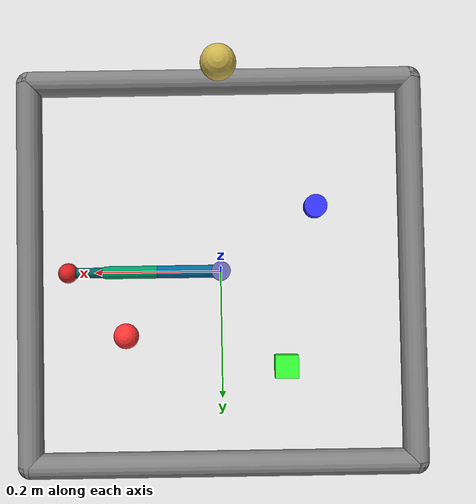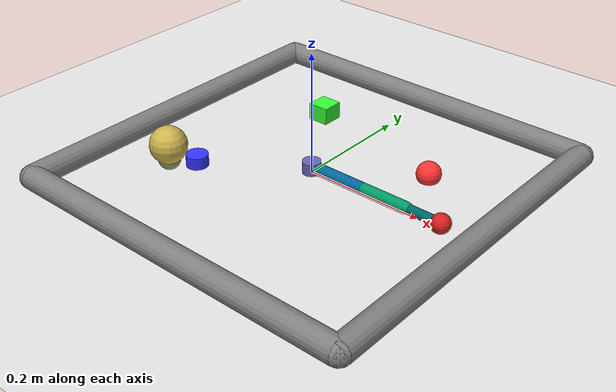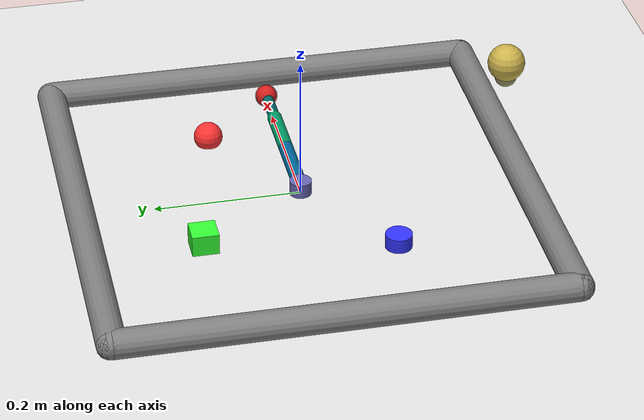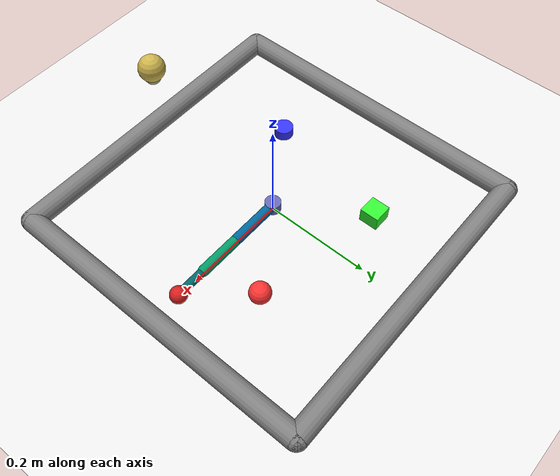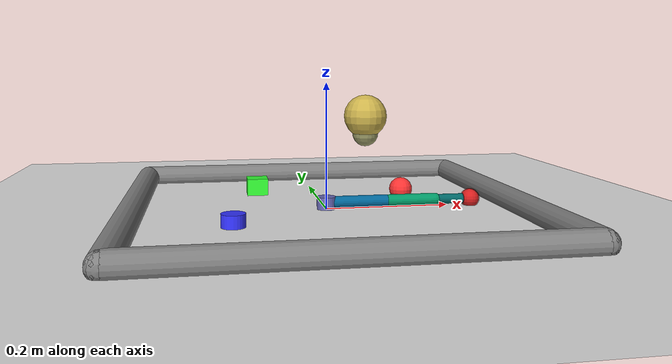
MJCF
<mujoco model="tabletop_reach_v6">
  <compiler angle="radian" inertiafromgeom="true"/>
  <default>
    <joint armature="1" damping="1" limited="true"/>
    <geom contype="0" friction="1 0.1 0.1"/>
  </default>
  <option gravity="0 0 -9.81" integrator="RK4" timestep="0.01"/>

  <worldbody>
    <!-- Ground -->
    <geom conaffinity="0" contype="0" name="ground" pos="0 0 0" rgba="0.9 0.9 0.9 1" size="1 1 10" type="plane"/>

    <!-- Arena walls -->
    <geom conaffinity="0" contype="0" fromto="-.3 -.3 .01 .3 -.3 .01" name="sideS" rgba="0.5 0.5 0.5 1" size=".02" type="capsule"/>
    <geom conaffinity="0" contype="0" fromto=" .3 -.3 .01 .3  .3 .01" name="sideE" rgba="0.5 0.5 0.5 1" size=".02" type="capsule"/>
    <geom conaffinity="0" contype="0" fromto="-.3  .3 .01 .3  .3 .01" name="sideN" rgba="0.5 0.5 0.5 1" size=".02" type="capsule"/>
    <geom conaffinity="0" contype="0" fromto="-.3 -.3 .01 -.3 .3 .01" name="sideW" rgba="0.5 0.5 0.5 1" size=".02" type="capsule"/>

    <!-- Arm pivot -->
    <geom conaffinity="0" contype="0" fromto="0 0 0 0 0 0.02" name="root" rgba="0.4 0.4 0.7 1" size=".015" type="cylinder"/>

    <!-- 3-joint arm (unchanged from v1-v5) -->
    <body name="body0" pos="0 0 .01">
      <joint axis="0 0 1" limited="false" name="joint0" pos="0 0 0" type="hinge"/>
      <geom fromto="0 0 0 0.1 0 0" name="link0" rgba="0.0 0.4 0.6 1" size=".01" type="capsule"/>

      <body name="body1" pos="0.1 0 0">
        <joint axis="0 0 1" limited="true" name="joint1" pos="0 0 0" range="-3.0 3.0" type="hinge"/>
        <geom fromto="0 0 0 0.08 0 0" name="link1" rgba="0.0 0.6 0.4 1" size=".01" type="capsule"/>

        <body name="body2" pos="0.08 0 0">
          <joint axis="0 0 1" limited="true" name="joint2" pos="0 0 0" range="-3.0 3.0" type="hinge"/>
          <geom fromto="0 0 0 0.06 0 0" name="link2" rgba="0.0 0.4 0.4 1" size=".008" type="capsule"/>

          <body name="fingertip_body" pos="0.06 0 0">
            <geom contype="1" conaffinity="1" name="fingertip_geom" pos="0 0 0" rgba="0.8 0.2 0.2 1" size=".015" type="sphere"/>
            <site name="fingertip" pos="0 0 0" size="0.016" rgba="1 0 0 0.3"/>
          </body>
        </body>
      </body>
    </body>

    <!-- Head with pan/tilt. Mounted at the edge of the table, elevated,
         looking across the arena. Two hinge joints: head_pan (yaw) and
         head_tilt (pitch). -->
    <body name="head_base" pos="0 -0.28 0.15">
      <joint axis="0 0 1" limited="true" name="head_pan" pos="0 0 0" range="-1.2 1.2" type="hinge"/>
      <geom name="head_base_geom" pos="0 0 0" rgba="0.6 0.6 0.4 1" size=".015" type="sphere"/>

      <body name="head" pos="0 0 0.02">
        <joint axis="1 0 0" limited="true" name="head_tilt" pos="0 0 0" range="-0.8 0.8" type="hinge"/>
        <geom name="head_geom" pos="0 0 0" rgba="0.8 0.7 0.3 1" size=".025" type="sphere"/>

        <camera name="head_cam" pos="0 0.01 0" xyaxes="1 0 0 0 0.5 0.866" fovy="45"/>
      </body>
    </body>

    <!-- Object 0: red sphere -->
    <body name="object_0" pos="0.15 0.1 0.01">
      <joint armature="0" axis="1 0 0" damping="0" limited="true" name="obj0_x" range="-.27 .27" ref="0.15" stiffness="0" type="slide"/>
      <joint armature="0" axis="0 1 0" damping="0" limited="true" name="obj0_y" range="-.27 .27" ref="0.1" stiffness="0" type="slide"/>
      <geom contype="1" conaffinity="1" name="obj0_geom" pos="0 0 0" rgba="1 0.2 0.2 1" size=".02" type="sphere"/>
    </body>

    <!-- Object 1: green box -->
    <body name="object_1" pos="-0.1 0.15 0.01">
      <joint armature="0" axis="1 0 0" damping="0" limited="true" name="obj1_x" range="-.27 .27" ref="-0.1" stiffness="0" type="slide"/>
      <joint armature="0" axis="0 1 0" damping="0" limited="true" name="obj1_y" range="-.27 .27" ref="0.15" stiffness="0" type="slide"/>
      <geom contype="1" conaffinity="1" name="obj1_geom" pos="0 0 0" rgba="0.2 1 0.2 1" size=".018 .018 .018" type="box"/>
    </body>

    <!-- Object 2: blue cylinder -->
    <body name="object_2" pos="-0.15 -0.1 0.01">
      <joint armature="0" axis="1 0 0" damping="0" limited="true" name="obj2_x" range="-.27 .27" ref="-0.15" stiffness="0" type="slide"/>
      <joint armature="0" axis="0 1 0" damping="0" limited="true" name="obj2_y" range="-.27 .27" ref="-0.1" stiffness="0" type="slide"/>
      <geom contype="1" conaffinity="1" name="obj2_geom" pos="0 0 0" rgba="0.2 0.2 1 1" size=".018 .01" type="cylinder"/>
    </body>

    <!-- Overhead camera (kept for rendering/visualization, not agent use) -->
    <camera name="overhead" pos="0 0 0.8" xyaxes="1 0 0 0 1 0" fovy="45"/>
  </worldbody>

  <actuator>
    <motor ctrllimited="true" ctrlrange="-1.0 1.0" gear="200.0" joint="joint0"/>
    <motor ctrllimited="true" ctrlrange="-1.0 1.0" gear="200.0" joint="joint1"/>
    <motor ctrllimited="true" ctrlrange="-1.0 1.0" gear="150.0" joint="joint2"/>
    <!-- Position-controlled head gaze: ctrl is target angle in the joint's range.
         kp is stiffness; the joint tracks the commanded position. -->
    <position ctrllimited="true" ctrlrange="-1.2 1.2" joint="head_pan" kp="5"/>
    <position ctrllimited="true" ctrlrange="-0.8 0.8" joint="head_tilt" kp="5"/>
  </actuator>

  <sensor>
    <touch name="fingertip_touch" site="fingertip"/>
    <jointpos name="joint0_pos" joint="joint0"/>
    <jointpos name="joint1_pos" joint="joint1"/>
    <jointpos name="joint2_pos" joint="joint2"/>
    <jointvel name="joint0_vel" joint="joint0"/>
    <jointvel name="joint1_vel" joint="joint1"/>
    <jointvel name="joint2_vel" joint="joint2"/>
    <jointpos name="head_pan_pos" joint="head_pan"/>
    <jointpos name="head_tilt_pos" joint="head_tilt"/>
  </sensor>
</mujoco>
